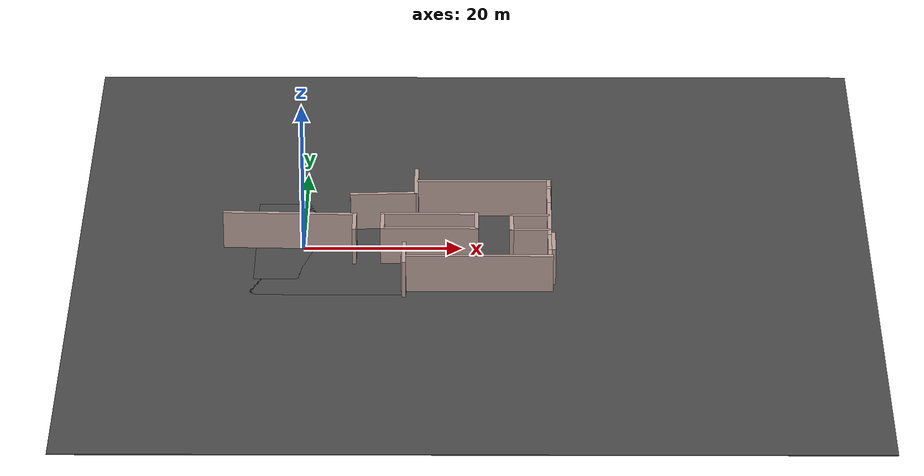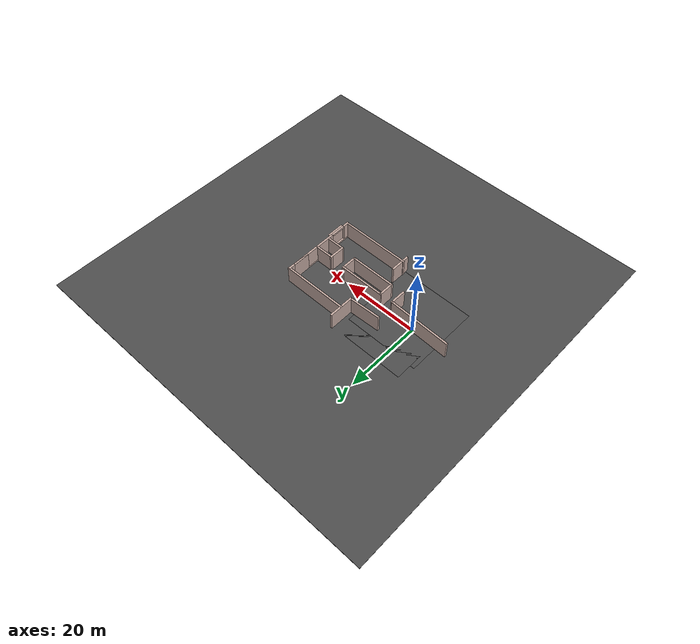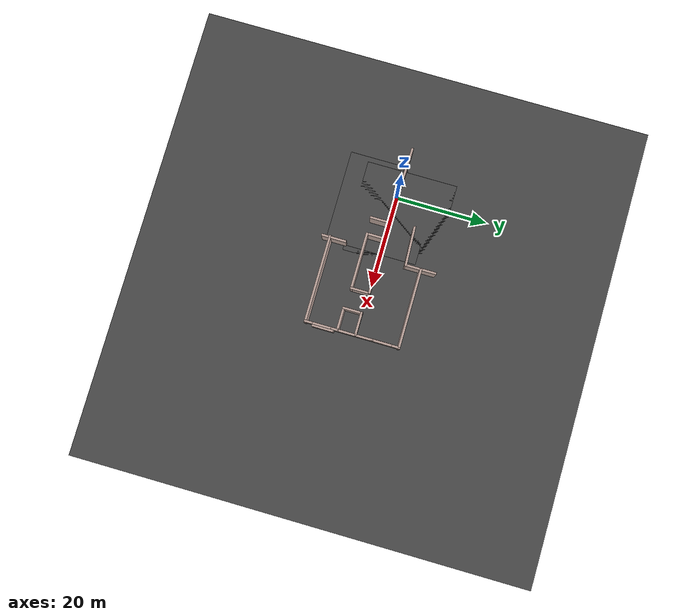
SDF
<sdf version="1.6">
 <model name="engineering_815">
  <link name="Wall_348">
   <pose>14.1272 8.89037 0 0 -0 1.5708</pose>
   <visual name="Wall_348_Visual">
    <pose>0 0 2.5 0 -0 0</pose>
    <geometry><box><size>6.85 0.5 5</size></box></geometry>
    <material>
     <script><uri>file://media/materials/scripts/gazebo.material</uri><name>Gazebo/Grey</name></script>
     <ambient>0.760784 0.662745 0.627451 1</ambient>
     <diffuse>0.7 0.7 0.7 1</diffuse>
     <specular>0.01 0.01 0.01 1</specular>
     <emissive>0 0 0 1</emissive>
    </material>
   </visual>
   <collision name="Wall_348_Collision">
    <pose>0 0 2.5 0 -0 0</pose>
    <geometry><box><size>6.85 0.5 5</size></box></geometry>
    <surface>
     <friction>
      <ode><mu>1</mu><mu2>1</mu2><fdir1>0 0 0</fdir1><slip1>0</slip1><slip2>0</slip2></ode>
      <torsional>
       <coefficient>1</coefficient>
       <patch_radius>0</patch_radius>
       <surface_radius>0</surface_radius>
       <use_patch_radius>1</use_patch_radius>
       <ode><slip>0</slip></ode>
      </torsional>
     </friction>
     <bounce><restitution_coefficient>0</restitution_coefficient><threshold>1e+06</threshold></bounce>
     <contact>
      <collide_without_contact>0</collide_without_contact>
      <collide_without_contact_bitmask>1</collide_without_contact_bitmask>
      <collide_bitmask>1</collide_bitmask>
      <ode>
       <soft_cfm>0</soft_cfm>
       <soft_erp>0.2</soft_erp>
       <kp>1e+13</kp>
       <kd>1</kd>
       <max_vel>0.01</max_vel>
       <min_depth>0</min_depth>
      </ode>
      <bullet>
       <split_impulse>1</split_impulse>
       <split_impulse_penetration_threshold>-0.01</split_impulse_penetration_threshold>
       <soft_cfm>0</soft_cfm>
       <soft_erp>0.2</soft_erp>
       <kp>1e+13</kp>
       <kd>1</kd>
      </bullet>
     </contact>
    </surface>
   </collision>
  </link>
  <link name="Wall_356">
   <pose>12.8062 -10.2246 0 0 0 -1.5708</pose>
   <visual name="Wall_356_Visual">
    <pose>0 0 2.5 0 -0 0</pose>
    <geometry><box><size>5.34955 0.5 5</size></box></geometry>
    <material>
     <script><uri>file://media/materials/scripts/gazebo.material</uri><name>Gazebo/Grey</name></script>
     <ambient>0.760784 0.662745 0.627451 1</ambient>
     <diffuse>0.7 0.7 0.7 1</diffuse>
     <specular>0.01 0.01 0.01 1</specular>
     <emissive>0 0 0 1</emissive>
    </material>
   </visual>
   <collision name="Wall_356_Collision">
    <pose>0 0 2.5 0 -0 0</pose>
    <geometry><box><size>5.34955 0.5 5</size></box></geometry>
    <surface>
     <friction>
      <ode><mu>1</mu><mu2>1</mu2><fdir1>0 0 0</fdir1><slip1>0</slip1><slip2>0</slip2></ode>
      <torsional>
       <coefficient>1</coefficient>
       <patch_radius>0</patch_radius>
       <surface_radius>0</surface_radius>
       <use_patch_radius>1</use_patch_radius>
       <ode><slip>0</slip></ode>
      </torsional>
     </friction>
     <bounce><restitution_coefficient>0</restitution_coefficient><threshold>1e+06</threshold></bounce>
     <contact>
      <collide_without_contact>0</collide_without_contact>
      <collide_without_contact_bitmask>1</collide_without_contact_bitmask>
      <collide_bitmask>1</collide_bitmask>
      <ode>
       <soft_cfm>0</soft_cfm>
       <soft_erp>0.2</soft_erp>
       <kp>1e+13</kp>
       <kd>1</kd>
       <max_vel>0.01</max_vel>
       <min_depth>0</min_depth>
      </ode>
      <bullet>
       <split_impulse>1</split_impulse>
       <split_impulse_penetration_threshold>-0.01</split_impulse_penetration_threshold>
       <soft_cfm>0</soft_cfm>
       <soft_erp>0.2</soft_erp>
       <kp>1e+13</kp>
       <kd>1</kd>
      </bullet>
     </contact>
    </surface>
   </collision>
  </link>
  <link name="Wall_359_clone_1">
   <pose>31.4492 -7.25835 0 0 0 -1.5708</pose>
   <visual name="Wall_359_Visual">
    <pose>0 0 2.5 0 -0 0</pose>
    <geometry><box><size>4.59973 0.5 5</size></box></geometry>
    <material>
     <script><uri>file://media/materials/scripts/gazebo.material</uri><name>Gazebo/Grey</name></script>
     <ambient>0.760784 0.662745 0.627451 1</ambient>
     <diffuse>0.7 0.7 0.7 1</diffuse>
     <specular>0.01 0.01 0.01 1</specular>
     <emissive>0 0 0 1</emissive>
     <shader type="pixel"/>
    </material>
   </visual>
   <collision name="Wall_359_Collision">
    <pose>0 0 2.5 0 -0 0</pose>
    <geometry><box><size>4.59973 0.5 5</size></box></geometry>
    <surface>
     <friction>
      <ode><mu>1</mu><mu2>1</mu2><fdir1>0 0 0</fdir1><slip1>0</slip1><slip2>0</slip2></ode>
      <torsional>
       <coefficient>1</coefficient>
       <patch_radius>0</patch_radius>
       <surface_radius>0</surface_radius>
       <use_patch_radius>1</use_patch_radius>
       <ode><slip>0</slip></ode>
      </torsional>
     </friction>
     <bounce><restitution_coefficient>0</restitution_coefficient><threshold>1e+06</threshold></bounce>
     <contact>
      <collide_without_contact>0</collide_without_contact>
      <collide_without_contact_bitmask>1</collide_without_contact_bitmask>
      <collide_bitmask>1</collide_bitmask>
      <ode>
       <soft_cfm>0</soft_cfm>
       <soft_erp>0.2</soft_erp>
       <kp>1e+13</kp>
       <kd>1</kd>
       <max_vel>0.01</max_vel>
       <min_depth>0</min_depth>
      </ode>
      <bullet>
       <split_impulse>1</split_impulse>
       <split_impulse_penetration_threshold>-0.01</split_impulse_penetration_threshold>
       <soft_cfm>0</soft_cfm>
       <soft_erp>0.2</soft_erp>
       <kp>1e+13</kp>
       <kd>1</kd>
      </bullet>
     </contact>
    </surface>
   </collision>
  </link>
  <link name="Wall_359_clone_2">
   <pose>30.9564 5.28437 0 0 0 -1.5708</pose>
   <visual name="Wall_359_Visual">
    <pose>0 0 2.5 0 -0 0</pose>
    <geometry><box><size>4.59973 0.5 5</size></box></geometry>
    <material>
     <script><uri>file://media/materials/scripts/gazebo.material</uri><name>Gazebo/Grey</name></script>
     <ambient>0.760784 0.662745 0.627451 1</ambient>
     <diffuse>0.7 0.7 0.7 1</diffuse>
     <specular>0.01 0.01 0.01 1</specular>
     <emissive>0 0 0 1</emissive>
     <shader type="pixel"/>
    </material>
   </visual>
   <collision name="Wall_359_Collision">
    <pose>0 0 2.5 0 -0 0</pose>
    <geometry><box><size>4.59973 0.5 5</size></box></geometry>
    <surface>
     <friction>
      <ode><mu>1</mu><mu2>1</mu2><fdir1>0 0 0</fdir1><slip1>0</slip1><slip2>0</slip2></ode>
      <torsional>
       <coefficient>1</coefficient>
       <patch_radius>0</patch_radius>
       <surface_radius>0</surface_radius>
       <use_patch_radius>1</use_patch_radius>
       <ode><slip>0</slip></ode>
      </torsional>
     </friction>
     <bounce><restitution_coefficient>0</restitution_coefficient><threshold>1e+06</threshold></bounce>
     <contact>
      <collide_without_contact>0</collide_without_contact>
      <collide_without_contact_bitmask>1</collide_without_contact_bitmask>
      <collide_bitmask>1</collide_bitmask>
      <ode>
       <soft_cfm>0</soft_cfm>
       <soft_erp>0.2</soft_erp>
       <kp>1e+13</kp>
       <kd>1</kd>
       <max_vel>0.01</max_vel>
       <min_depth>0</min_depth>
      </ode>
      <bullet>
       <split_impulse>1</split_impulse>
       <split_impulse_penetration_threshold>-0.01</split_impulse_penetration_threshold>
       <soft_cfm>0</soft_cfm>
       <soft_erp>0.2</soft_erp>
       <kp>1e+13</kp>
       <kd>1</kd>
      </bullet>
     </contact>
    </surface>
   </collision>
  </link>
  <link name="Wall_366">
   <pose>6.46321 -2.01663 0 0 -0 1.5708</pose>
   <visual name="Wall_366_Visual">
    <pose>0 0 2.5 0 -0 0</pose>
    <geometry><box><size>4.35 0.5 5</size></box></geometry>
    <material>
     <script><uri>file://media/materials/scripts/gazebo.material</uri><name>Gazebo/Grey</name></script>
     <ambient>0.760784 0.662745 0.627451 1</ambient>
     <diffuse>0.7 0.7 0.7 1</diffuse>
     <specular>0.01 0.01 0.01 1</specular>
     <emissive>0 0 0 1</emissive>
    </material>
   </visual>
   <collision name="Wall_366_Collision">
    <pose>0 0 2.5 0 -0 0</pose>
    <geometry><box><size>4.35 0.5 5</size></box></geometry>
    <surface>
     <friction>
      <ode><mu>1</mu><mu2>1</mu2><fdir1>0 0 0</fdir1><slip1>0</slip1><slip2>0</slip2></ode>
      <torsional>
       <coefficient>1</coefficient>
       <patch_radius>0</patch_radius>
       <surface_radius>0</surface_radius>
       <use_patch_radius>1</use_patch_radius>
       <ode><slip>0</slip></ode>
      </torsional>
     </friction>
     <bounce><restitution_coefficient>0</restitution_coefficient><threshold>1e+06</threshold></bounce>
     <contact>
      <collide_without_contact>0</collide_without_contact>
      <collide_without_contact_bitmask>1</collide_without_contact_bitmask>
      <collide_bitmask>1</collide_bitmask>
      <ode>
       <soft_cfm>0</soft_cfm>
       <soft_erp>0.2</soft_erp>
       <kp>1e+13</kp>
       <kd>1</kd>
       <max_vel>0.01</max_vel>
       <min_depth>0</min_depth>
      </ode>
      <bullet>
       <split_impulse>1</split_impulse>
       <split_impulse_penetration_threshold>-0.01</split_impulse_penetration_threshold>
       <soft_cfm>0</soft_cfm>
       <soft_erp>0.2</soft_erp>
       <kp>1e+13</kp>
       <kd>1</kd>
      </bullet>
     </contact>
    </surface>
   </collision>
  </link>
  <link name="Wall_367">
   <pose>-1.71178 0.158371 0 0 -0 3.11102</pose>
   <visual name="Wall_367_Visual">
    <pose>0 0 2.5 0 -0 0</pose>
    <geometry><box><size>16.8579 0.5 5</size></box></geometry>
    <material>
     <script><uri>file://media/materials/scripts/gazebo.material</uri><name>Gazebo/Grey</name></script>
     <ambient>0.760784 0.662745 0.627451 1</ambient>
     <diffuse>0.7 0.7 0.7 1</diffuse>
     <specular>0.01 0.01 0.01 1</specular>
     <emissive>0 0 0 1</emissive>
    </material>
   </visual>
   <collision name="Wall_367_Collision">
    <pose>0 0 2.5 0 -0 0</pose>
    <geometry><box><size>16.8579 0.5 5</size></box></geometry>
    <surface>
     <friction>
      <ode><mu>1</mu><mu2>1</mu2><fdir1>0 0 0</fdir1><slip1>0</slip1><slip2>0</slip2></ode>
      <torsional>
       <coefficient>1</coefficient>
       <patch_radius>0</patch_radius>
       <surface_radius>0</surface_radius>
       <use_patch_radius>1</use_patch_radius>
       <ode><slip>0</slip></ode>
      </torsional>
     </friction>
     <bounce><restitution_coefficient>0</restitution_coefficient><threshold>1e+06</threshold></bounce>
     <contact>
      <collide_without_contact>0</collide_without_contact>
      <collide_without_contact_bitmask>1</collide_without_contact_bitmask>
      <collide_bitmask>1</collide_bitmask>
      <ode>
       <soft_cfm>0</soft_cfm>
       <soft_erp>0.2</soft_erp>
       <kp>1e+13</kp>
       <kd>1</kd>
       <max_vel>0.01</max_vel>
       <min_depth>0</min_depth>
      </ode>
      <bullet>
       <split_impulse>1</split_impulse>
       <split_impulse_penetration_threshold>-0.01</split_impulse_penetration_threshold>
       <soft_cfm>0</soft_cfm>
       <soft_erp>0.2</soft_erp>
       <kp>1e+13</kp>
       <kd>1</kd>
      </bullet>
     </contact>
    </surface>
   </collision>
  </link>
  <link name="Wall_370">
   <pose>9.99521 -2.02863 0 0 0 -1.5708</pose>
   <visual name="Wall_370_Visual">
    <pose>0 0 2.5 0 -0 0</pose>
    <geometry><box><size>4.09954 0.5 5</size></box></geometry>
    <material>
     <script><uri>file://media/materials/scripts/gazebo.material</uri><name>Gazebo/Grey</name></script>
     <ambient>0.760784 0.662745 0.627451 1</ambient>
     <diffuse>0.7 0.7 0.7 1</diffuse>
     <specular>0.01 0.01 0.01 1</specular>
     <emissive>0 0 0 1</emissive>
    </material>
   </visual>
   <collision name="Wall_370_Collision">
    <pose>0 0 2.5 0 -0 0</pose>
    <geometry><box><size>4.09954 0.5 5</size></box></geometry>
    <surface>
     <friction>
      <ode><mu>1</mu><mu2>1</mu2><fdir1>0 0 0</fdir1><slip1>0</slip1><slip2>0</slip2></ode>
      <torsional>
       <coefficient>1</coefficient>
       <patch_radius>0</patch_radius>
       <surface_radius>0</surface_radius>
       <use_patch_radius>1</use_patch_radius>
       <ode><slip>0</slip></ode>
      </torsional>
     </friction>
     <bounce><restitution_coefficient>0</restitution_coefficient><threshold>1e+06</threshold></bounce>
     <contact>
      <collide_without_contact>0</collide_without_contact>
      <collide_without_contact_bitmask>1</collide_without_contact_bitmask>
      <collide_bitmask>1</collide_bitmask>
      <ode>
       <soft_cfm>0</soft_cfm>
       <soft_erp>0.2</soft_erp>
       <kp>1e+13</kp>
       <kd>1</kd>
       <max_vel>0.01</max_vel>
       <min_depth>0</min_depth>
      </ode>
      <bullet>
       <split_impulse>1</split_impulse>
       <split_impulse_penetration_threshold>-0.01</split_impulse_penetration_threshold>
       <soft_cfm>0</soft_cfm>
       <soft_erp>0.2</soft_erp>
       <kp>1e+13</kp>
       <kd>1</kd>
      </bullet>
     </contact>
    </surface>
   </collision>
  </link>
  <link name="Wall_371">
   <pose>15.9202 -3.82863 0 0 -0 0</pose>
   <visual name="Wall_371_Visual">
    <pose>0 0 2.5 0 -0 0</pose>
    <geometry><box><size>12.3505 0.5 5</size></box></geometry>
    <material>
     <script><uri>file://media/materials/scripts/gazebo.material</uri><name>Gazebo/Grey</name></script>
     <ambient>0.760784 0.662745 0.627451 1</ambient>
     <diffuse>0.7 0.7 0.7 1</diffuse>
     <specular>0.01 0.01 0.01 1</specular>
     <emissive>0 0 0 1</emissive>
    </material>
   </visual>
   <collision name="Wall_371_Collision">
    <pose>0 0 2.5 0 -0 0</pose>
    <geometry><box><size>12.3505 0.5 5</size></box></geometry>
    <surface>
     <friction>
      <ode><mu>1</mu><mu2>1</mu2><fdir1>0 0 0</fdir1><slip1>0</slip1><slip2>0</slip2></ode>
      <torsional>
       <coefficient>1</coefficient>
       <patch_radius>0</patch_radius>
       <surface_radius>0</surface_radius>
       <use_patch_radius>1</use_patch_radius>
       <ode><slip>0</slip></ode>
      </torsional>
     </friction>
     <bounce><restitution_coefficient>0</restitution_coefficient><threshold>1e+06</threshold></bounce>
     <contact>
      <collide_without_contact>0</collide_without_contact>
      <collide_without_contact_bitmask>1</collide_without_contact_bitmask>
      <collide_bitmask>1</collide_bitmask>
      <ode>
       <soft_cfm>0</soft_cfm>
       <soft_erp>0.2</soft_erp>
       <kp>1e+13</kp>
       <kd>1</kd>
       <max_vel>0.01</max_vel>
       <min_depth>0</min_depth>
      </ode>
      <bullet>
       <split_impulse>1</split_impulse>
       <split_impulse_penetration_threshold>-0.01</split_impulse_penetration_threshold>
       <soft_cfm>0</soft_cfm>
       <soft_erp>0.2</soft_erp>
       <kp>1e+13</kp>
       <kd>1</kd>
      </bullet>
     </contact>
    </surface>
   </collision>
  </link>
  <link name="Wall_372">
   <pose>21.8452 -1.90363 0 0 -0 1.5708</pose>
   <visual name="Wall_372_Visual">
    <pose>0 0 2.5 0 -0 0</pose>
    <geometry><box><size>4.35 0.5 5</size></box></geometry>
    <material>
     <script><uri>file://media/materials/scripts/gazebo.material</uri><name>Gazebo/Grey</name></script>
     <ambient>0.760784 0.662745 0.627451 1</ambient>
     <diffuse>0.7 0.7 0.7 1</diffuse>
     <specular>0.01 0.01 0.01 1</specular>
     <emissive>0 0 0 1</emissive>
    </material>
   </visual>
   <collision name="Wall_372_Collision">
    <pose>0 0 2.5 0 -0 0</pose>
    <geometry><box><size>4.35 0.5 5</size></box></geometry>
    <surface>
     <friction>
      <ode><mu>1</mu><mu2>1</mu2><fdir1>0 0 0</fdir1><slip1>0</slip1><slip2>0</slip2></ode>
      <torsional>
       <coefficient>1</coefficient>
       <patch_radius>0</patch_radius>
       <surface_radius>0</surface_radius>
       <use_patch_radius>1</use_patch_radius>
       <ode><slip>0</slip></ode>
      </torsional>
     </friction>
     <bounce><restitution_coefficient>0</restitution_coefficient><threshold>1e+06</threshold></bounce>
     <contact>
      <collide_without_contact>0</collide_without_contact>
      <collide_without_contact_bitmask>1</collide_without_contact_bitmask>
      <collide_bitmask>1</collide_bitmask>
      <ode>
       <soft_cfm>0</soft_cfm>
       <soft_erp>0.2</soft_erp>
       <kp>1e+13</kp>
       <kd>1</kd>
       <max_vel>0.01</max_vel>
       <min_depth>0</min_depth>
      </ode>
      <bullet>
       <split_impulse>1</split_impulse>
       <split_impulse_penetration_threshold>-0.01</split_impulse_penetration_threshold>
       <soft_cfm>0</soft_cfm>
       <soft_erp>0.2</soft_erp>
       <kp>1e+13</kp>
       <kd>1</kd>
      </bullet>
     </contact>
    </surface>
   </collision>
  </link>
  <link name="Wall_373">
   <pose>15.9202 0.021371 0 0 -0 3.14159</pose>
   <visual name="Wall_373_Visual">
    <pose>0 0 2.5 0 -0 0</pose>
    <geometry><box><size>12.3495 0.5 5</size></box></geometry>
    <material>
     <script><uri>file://media/materials/scripts/gazebo.material</uri><name>Gazebo/Grey</name></script>
     <ambient>0.760784 0.662745 0.627451 1</ambient>
     <diffuse>0.7 0.7 0.7 1</diffuse>
     <specular>0.01 0.01 0.01 1</specular>
     <emissive>0 0 0 1</emissive>
    </material>
   </visual>
   <collision name="Wall_373_Collision">
    <pose>0 0 2.5 0 -0 0</pose>
    <geometry><box><size>12.3495 0.5 5</size></box></geometry>
    <surface>
     <friction>
      <ode><mu>1</mu><mu2>1</mu2><fdir1>0 0 0</fdir1><slip1>0</slip1><slip2>0</slip2></ode>
      <torsional>
       <coefficient>1</coefficient>
       <patch_radius>0</patch_radius>
       <surface_radius>0</surface_radius>
       <use_patch_radius>1</use_patch_radius>
       <ode><slip>0</slip></ode>
      </torsional>
     </friction>
     <bounce><restitution_coefficient>0</restitution_coefficient><threshold>1e+06</threshold></bounce>
     <contact>
      <collide_without_contact>0</collide_without_contact>
      <collide_without_contact_bitmask>1</collide_without_contact_bitmask>
      <collide_bitmask>1</collide_bitmask>
      <ode>
       <soft_cfm>0</soft_cfm>
       <soft_erp>0.2</soft_erp>
       <kp>1e+13</kp>
       <kd>1</kd>
       <max_vel>0.01</max_vel>
       <min_depth>0</min_depth>
      </ode>
      <bullet>
       <split_impulse>1</split_impulse>
       <split_impulse_penetration_threshold>-0.01</split_impulse_penetration_threshold>
       <soft_cfm>0</soft_cfm>
       <soft_erp>0.2</soft_erp>
       <kp>1e+13</kp>
       <kd>1</kd>
      </bullet>
     </contact>
    </surface>
   </collision>
  </link>
  <link name="Wall_378">
   <pose>22.6491 9.00137 0 0 -0 0</pose>
   <visual name="Wall_378_Visual">
    <pose>0 0 2.5 0 -0 0</pose>
    <geometry><box><size>17.4538 0.5 5</size></box></geometry>
    <material>
     <script><uri>file://media/materials/scripts/gazebo.material</uri><name>Gazebo/Grey</name></script>
     <ambient>0.760784 0.662745 0.627451 1</ambient>
     <diffuse>0.7 0.7 0.7 1</diffuse>
     <specular>0.01 0.01 0.01 1</specular>
     <emissive>0 0 0 1</emissive>
    </material>
   </visual>
   <collision name="Wall_378_Collision">
    <pose>0 0 2.5 0 -0 0</pose>
    <geometry><box><size>17.4538 0.5 5</size></box></geometry>
    <surface>
     <friction>
      <ode><mu>1</mu><mu2>1</mu2><fdir1>0 0 0</fdir1><slip1>0</slip1><slip2>0</slip2></ode>
      <torsional>
       <coefficient>1</coefficient>
       <patch_radius>0</patch_radius>
       <surface_radius>0</surface_radius>
       <use_patch_radius>1</use_patch_radius>
       <ode><slip>0</slip></ode>
      </torsional>
     </friction>
     <bounce><restitution_coefficient>0</restitution_coefficient><threshold>1e+06</threshold></bounce>
     <contact>
      <collide_without_contact>0</collide_without_contact>
      <collide_without_contact_bitmask>1</collide_without_contact_bitmask>
      <collide_bitmask>1</collide_bitmask>
      <ode>
       <soft_cfm>0</soft_cfm>
       <soft_erp>0.2</soft_erp>
       <kp>1e+13</kp>
       <kd>1</kd>
       <max_vel>0.01</max_vel>
       <min_depth>0</min_depth>
      </ode>
      <bullet>
       <split_impulse>1</split_impulse>
       <split_impulse_penetration_threshold>-0.01</split_impulse_penetration_threshold>
       <soft_cfm>0</soft_cfm>
       <soft_erp>0.2</soft_erp>
       <kp>1e+13</kp>
       <kd>1</kd>
      </bullet>
     </contact>
    </surface>
   </collision>
  </link>
  <link name="Wall_380">
   <pose>30.9845 -1.04863 0 0 0 -1.5708</pose>
   <visual name="Wall_380_Visual_3">
    <pose>9.40635 0 2.75 0 -0 0</pose>
    <geometry><box><size>1.78723 0.5 4.5</size></box></geometry>
    <material>
     <script><uri>file://media/materials/scripts/gazebo.material</uri><name>Gazebo/Grey</name></script>
     <ambient>0.760784 0.662745 0.627451 1</ambient>
     <diffuse>0.7 0.7 0.7 1</diffuse>
     <specular>0.01 0.01 0.01 1</specular>
     <emissive>0 0 0 1</emissive>
    </material>
   </visual>
   <visual name="Wall_380_Visual_4">
    <pose>-6.50656 0 4.75 0 -0 0</pose>
    <geometry><box><size>4 0.5 0.5</size></box></geometry>
    <material>
     <script><uri>file://media/materials/scripts/gazebo.material</uri><name>Gazebo/Grey</name></script>
     <ambient>0.760784 0.662745 0.627451 1</ambient>
     <diffuse>0.7 0.7 0.7 1</diffuse>
     <specular>0.01 0.01 0.01 1</specular>
     <emissive>0 0 0 1</emissive>
    </material>
   </visual>
   <visual name="Wall_380_Visual_2">
    <pose>0.003087 0 2.75 0 -0 0</pose>
    <geometry><box><size>9.0193 0.5 4.5</size></box></geometry>
    <material>
     <script><uri>file://media/materials/scripts/gazebo.material</uri><name>Gazebo/Grey</name></script>
     <ambient>0.760784 0.662745 0.627451 1</ambient>
     <diffuse>0.7 0.7 0.7 1</diffuse>
     <specular>0.01 0.01 0.01 1</specular>
     <emissive>0 0 0 1</emissive>
    </material>
   </visual>
   <visual name="Wall_380_Visual_5">
    <pose>6.51274 0 4.75 0 -0 0</pose>
    <geometry><box><size>4 0.5 0.5</size></box></geometry>
    <material>
     <script><uri>file://media/materials/scripts/gazebo.material</uri><name>Gazebo/Grey</name></script>
     <ambient>0.760784 0.662745 0.627451 1</ambient>
     <diffuse>0.7 0.7 0.7 1</diffuse>
     <specular>0.01 0.01 0.01 1</specular>
     <emissive>0 0 0 1</emissive>
    </material>
   </visual>
   <visual name="Wall_380_Visual_1">
    <pose>0.896699 0 0.25 0 -0 0</pose>
    <geometry><box><size>18.8065 0.5 0.5</size></box></geometry>
    <material>
     <script><uri>file://media/materials/scripts/gazebo.material</uri><name>Gazebo/Grey</name></script>
     <ambient>0.760784 0.662745 0.627451 1</ambient>
     <diffuse>0.7 0.7 0.7 1</diffuse>
     <specular>0.01 0.01 0.01 1</specular>
     <emissive>0 0 0 1</emissive>
    </material>
   </visual>
   <visual name="Wall_380_Visual_0">
    <pose>-9.40326 0 2.5 0 -0 0</pose>
    <geometry><box><size>1.7934 0.5 5</size></box></geometry>
    <material>
     <script><uri>file://media/materials/scripts/gazebo.material</uri><name>Gazebo/Grey</name></script>
     <ambient>0.760784 0.662745 0.627451 1</ambient>
     <diffuse>0.7 0.7 0.7 1</diffuse>
     <specular>0.01 0.01 0.01 1</specular>
     <emissive>0 0 0 1</emissive>
    </material>
   </visual>
   <collision name="Wall_380_Collision_3">
    <pose>9.40635 0 2.75 0 -0 0</pose>
    <geometry><box><size>1.78723 0.5 4.5</size></box></geometry>
    <surface>
     <friction>
      <ode><mu>1</mu><mu2>1</mu2><fdir1>0 0 0</fdir1><slip1>0</slip1><slip2>0</slip2></ode>
      <torsional>
       <coefficient>1</coefficient>
       <patch_radius>0</patch_radius>
       <surface_radius>0</surface_radius>
       <use_patch_radius>1</use_patch_radius>
       <ode><slip>0</slip></ode>
      </torsional>
     </friction>
     <bounce><restitution_coefficient>0</restitution_coefficient><threshold>1e+06</threshold></bounce>
     <contact>
      <collide_without_contact>0</collide_without_contact>
      <collide_without_contact_bitmask>1</collide_without_contact_bitmask>
      <collide_bitmask>1</collide_bitmask>
      <ode>
       <soft_cfm>0</soft_cfm>
       <soft_erp>0.2</soft_erp>
       <kp>1e+13</kp>
       <kd>1</kd>
       <max_vel>0.01</max_vel>
       <min_depth>0</min_depth>
      </ode>
      <bullet>
       <split_impulse>1</split_impulse>
       <split_impulse_penetration_threshold>-0.01</split_impulse_penetration_threshold>
       <soft_cfm>0</soft_cfm>
       <soft_erp>0.2</soft_erp>
       <kp>1e+13</kp>
       <kd>1</kd>
      </bullet>
     </contact>
    </surface>
   </collision>
   <collision name="Wall_380_Collision_5">
    <pose>6.51274 0 4.75 0 -0 0</pose>
    <geometry><box><size>4 0.5 0.5</size></box></geometry>
    <surface>
     <friction>
      <ode><mu>1</mu><mu2>1</mu2><fdir1>0 0 0</fdir1><slip1>0</slip1><slip2>0</slip2></ode>
      <torsional>
       <coefficient>1</coefficient>
       <patch_radius>0</patch_radius>
       <surface_radius>0</surface_radius>
       <use_patch_radius>1</use_patch_radius>
       <ode><slip>0</slip></ode>
      </torsional>
     </friction>
     <bounce><restitution_coefficient>0</restitution_coefficient><threshold>1e+06</threshold></bounce>
     <contact>
      <collide_without_contact>0</collide_without_contact>
      <collide_without_contact_bitmask>1</collide_without_contact_bitmask>
      <collide_bitmask>1</collide_bitmask>
      <ode>
       <soft_cfm>0</soft_cfm>
       <soft_erp>0.2</soft_erp>
       <kp>1e+13</kp>
       <kd>1</kd>
       <max_vel>0.01</max_vel>
       <min_depth>0</min_depth>
      </ode>
      <bullet>
       <split_impulse>1</split_impulse>
       <split_impulse_penetration_threshold>-0.01</split_impulse_penetration_threshold>
       <soft_cfm>0</soft_cfm>
       <soft_erp>0.2</soft_erp>
       <kp>1e+13</kp>
       <kd>1</kd>
      </bullet>
     </contact>
    </surface>
   </collision>
   <collision name="Wall_380_Collision_0">
    <pose>-9.40326 0 2.5 0 -0 0</pose>
    <geometry><box><size>1.7934 0.5 5</size></box></geometry>
    <surface>
     <friction>
      <ode><mu>1</mu><mu2>1</mu2><fdir1>0 0 0</fdir1><slip1>0</slip1><slip2>0</slip2></ode>
      <torsional>
       <coefficient>1</coefficient>
       <patch_radius>0</patch_radius>
       <surface_radius>0</surface_radius>
       <use_patch_radius>1</use_patch_radius>
       <ode><slip>0</slip></ode>
      </torsional>
     </friction>
     <bounce><restitution_coefficient>0</restitution_coefficient><threshold>1e+06</threshold></bounce>
     <contact>
      <collide_without_contact>0</collide_without_contact>
      <collide_without_contact_bitmask>1</collide_without_contact_bitmask>
      <collide_bitmask>1</collide_bitmask>
      <ode>
       <soft_cfm>0</soft_cfm>
       <soft_erp>0.2</soft_erp>
       <kp>1e+13</kp>
       <kd>1</kd>
       <max_vel>0.01</max_vel>
       <min_depth>0</min_depth>
      </ode>
      <bullet>
       <split_impulse>1</split_impulse>
       <split_impulse_penetration_threshold>-0.01</split_impulse_penetration_threshold>
       <soft_cfm>0</soft_cfm>
       <soft_erp>0.2</soft_erp>
       <kp>1e+13</kp>
       <kd>1</kd>
      </bullet>
     </contact>
    </surface>
   </collision>
   <collision name="Wall_380_Collision_1">
    <pose>0.896699 0 0.25 0 -0 0</pose>
    <geometry><box><size>18.8065 0.5 0.5</size></box></geometry>
    <surface>
     <friction>
      <ode><mu>1</mu><mu2>1</mu2><fdir1>0 0 0</fdir1><slip1>0</slip1><slip2>0</slip2></ode>
      <torsional>
       <coefficient>1</coefficient>
       <patch_radius>0</patch_radius>
       <surface_radius>0</surface_radius>
       <use_patch_radius>1</use_patch_radius>
       <ode><slip>0</slip></ode>
      </torsional>
     </friction>
     <bounce><restitution_coefficient>0</restitution_coefficient><threshold>1e+06</threshold></bounce>
     <contact>
      <collide_without_contact>0</collide_without_contact>
      <collide_without_contact_bitmask>1</collide_without_contact_bitmask>
      <collide_bitmask>1</collide_bitmask>
      <ode>
       <soft_cfm>0</soft_cfm>
       <soft_erp>0.2</soft_erp>
       <kp>1e+13</kp>
       <kd>1</kd>
       <max_vel>0.01</max_vel>
       <min_depth>0</min_depth>
      </ode>
      <bullet>
       <split_impulse>1</split_impulse>
       <split_impulse_penetration_threshold>-0.01</split_impulse_penetration_threshold>
       <soft_cfm>0</soft_cfm>
       <soft_erp>0.2</soft_erp>
       <kp>1e+13</kp>
       <kd>1</kd>
      </bullet>
     </contact>
    </surface>
   </collision>
   <collision name="Wall_380_Collision_2">
    <pose>0.003087 0 2.75 0 -0 0</pose>
    <geometry><box><size>9.0193 0.5 4.5</size></box></geometry>
    <surface>
     <friction>
      <ode><mu>1</mu><mu2>1</mu2><fdir1>0 0 0</fdir1><slip1>0</slip1><slip2>0</slip2></ode>
      <torsional>
       <coefficient>1</coefficient>
       <patch_radius>0</patch_radius>
       <surface_radius>0</surface_radius>
       <use_patch_radius>1</use_patch_radius>
       <ode><slip>0</slip></ode>
      </torsional>
     </friction>
     <bounce><restitution_coefficient>0</restitution_coefficient><threshold>1e+06</threshold></bounce>
     <contact>
      <collide_without_contact>0</collide_without_contact>
      <collide_without_contact_bitmask>1</collide_without_contact_bitmask>
      <collide_bitmask>1</collide_bitmask>
      <ode>
       <soft_cfm>0</soft_cfm>
       <soft_erp>0.2</soft_erp>
       <kp>1e+13</kp>
       <kd>1</kd>
       <max_vel>0.01</max_vel>
       <min_depth>0</min_depth>
      </ode>
      <bullet>
       <split_impulse>1</split_impulse>
       <split_impulse_penetration_threshold>-0.01</split_impulse_penetration_threshold>
       <soft_cfm>0</soft_cfm>
       <soft_erp>0.2</soft_erp>
       <kp>1e+13</kp>
       <kd>1</kd>
      </bullet>
     </contact>
    </surface>
   </collision>
   <collision name="Wall_380_Collision_4">
    <pose>-6.50656 0 4.75 0 -0 0</pose>
    <geometry><box><size>4 0.5 0.5</size></box></geometry>
    <surface>
     <friction>
      <ode><mu>1</mu><mu2>1</mu2><fdir1>0 0 0</fdir1><slip1>0</slip1><slip2>0</slip2></ode>
      <torsional>
       <coefficient>1</coefficient>
       <patch_radius>0</patch_radius>
       <surface_radius>0</surface_radius>
       <use_patch_radius>1</use_patch_radius>
       <ode><slip>0</slip></ode>
      </torsional>
     </friction>
     <bounce><restitution_coefficient>0</restitution_coefficient><threshold>1e+06</threshold></bounce>
     <contact>
      <collide_without_contact>0</collide_without_contact>
      <collide_without_contact_bitmask>1</collide_without_contact_bitmask>
      <collide_bitmask>1</collide_bitmask>
      <ode>
       <soft_cfm>0</soft_cfm>
       <soft_erp>0.2</soft_erp>
       <kp>1e+13</kp>
       <kd>1</kd>
       <max_vel>0.01</max_vel>
       <min_depth>0</min_depth>
      </ode>
      <bullet>
       <split_impulse>1</split_impulse>
       <split_impulse_penetration_threshold>-0.01</split_impulse_penetration_threshold>
       <soft_cfm>0</soft_cfm>
       <soft_erp>0.2</soft_erp>
       <kp>1e+13</kp>
       <kd>1</kd>
      </bullet>
     </contact>
    </surface>
   </collision>
  </link>
  <link name="Wall_381">
   <pose>21.8991 -11.0986 0 0 -0 3.14159</pose>
   <visual name="Wall_381_Visual">
    <pose>0 0 2.5 0 -0 0</pose>
    <geometry><box><size>18.9538 0.5 5</size></box></geometry>
    <material>
     <script><uri>file://media/materials/scripts/gazebo.material</uri><name>Gazebo/Grey</name></script>
     <ambient>0.760784 0.662745 0.627451 1</ambient>
     <diffuse>0.7 0.7 0.7 1</diffuse>
     <specular>0.01 0.01 0.01 1</specular>
     <emissive>0 0 0 1</emissive>
    </material>
   </visual>
   <collision name="Wall_381_Collision">
    <pose>0 0 2.5 0 -0 0</pose>
    <geometry><box><size>18.9538 0.5 5</size></box></geometry>
    <surface>
     <friction>
      <ode><mu>1</mu><mu2>1</mu2><fdir1>0 0 0</fdir1><slip1>0</slip1><slip2>0</slip2></ode>
      <torsional>
       <coefficient>1</coefficient>
       <patch_radius>0</patch_radius>
       <surface_radius>0</surface_radius>
       <use_patch_radius>1</use_patch_radius>
       <ode><slip>0</slip></ode>
      </torsional>
     </friction>
     <bounce><restitution_coefficient>0</restitution_coefficient><threshold>1e+06</threshold></bounce>
     <contact>
      <collide_without_contact>0</collide_without_contact>
      <collide_without_contact_bitmask>1</collide_without_contact_bitmask>
      <collide_bitmask>1</collide_bitmask>
      <ode>
       <soft_cfm>0</soft_cfm>
       <soft_erp>0.2</soft_erp>
       <kp>1e+13</kp>
       <kd>1</kd>
       <max_vel>0.01</max_vel>
       <min_depth>0</min_depth>
      </ode>
      <bullet>
       <split_impulse>1</split_impulse>
       <split_impulse_penetration_threshold>-0.01</split_impulse_penetration_threshold>
       <soft_cfm>0</soft_cfm>
       <soft_erp>0.2</soft_erp>
       <kp>1e+13</kp>
       <kd>1</kd>
      </bullet>
     </contact>
    </surface>
   </collision>
  </link>
  <link name="Wall_384">
   <pose>26.2242 -2.28563 0 0 0 -1.5708</pose>
   <visual name="Wall_384_Visual">
    <pose>0 0 2.5 0 -0 0</pose>
    <geometry><box><size>4.35022 0.5 5</size></box></geometry>
    <material>
     <script><uri>file://media/materials/scripts/gazebo.material</uri><name>Gazebo/Grey</name></script>
     <ambient>0.760784 0.662745 0.627451 1</ambient>
     <diffuse>0.7 0.7 0.7 1</diffuse>
     <specular>0.01 0.01 0.01 1</specular>
     <emissive>0 0 0 1</emissive>
    </material>
   </visual>
   <collision name="Wall_384_Collision">
    <pose>0 0 2.5 0 -0 0</pose>
    <geometry><box><size>4.35022 0.5 5</size></box></geometry>
    <surface>
     <friction>
      <ode><mu>1</mu><mu2>1</mu2><fdir1>0 0 0</fdir1><slip1>0</slip1><slip2>0</slip2></ode>
      <torsional>
       <coefficient>1</coefficient>
       <patch_radius>0</patch_radius>
       <surface_radius>0</surface_radius>
       <use_patch_radius>1</use_patch_radius>
       <ode><slip>0</slip></ode>
      </torsional>
     </friction>
     <bounce><restitution_coefficient>0</restitution_coefficient><threshold>1e+06</threshold></bounce>
     <contact>
      <collide_without_contact>0</collide_without_contact>
      <collide_without_contact_bitmask>1</collide_without_contact_bitmask>
      <collide_bitmask>1</collide_bitmask>
      <ode>
       <soft_cfm>0</soft_cfm>
       <soft_erp>0.2</soft_erp>
       <kp>1e+13</kp>
       <kd>1</kd>
       <max_vel>0.01</max_vel>
       <min_depth>0</min_depth>
      </ode>
      <bullet>
       <split_impulse>1</split_impulse>
       <split_impulse_penetration_threshold>-0.01</split_impulse_penetration_threshold>
       <soft_cfm>0</soft_cfm>
       <soft_erp>0.2</soft_erp>
       <kp>1e+13</kp>
       <kd>1</kd>
      </bullet>
     </contact>
    </surface>
   </collision>
  </link>
  <link name="Wall_385">
   <pose>28.5242 -4.21063 0 0 -0 0</pose>
   <visual name="Wall_385_Visual">
    <pose>0 0 2.5 0 -0 0</pose>
    <geometry><box><size>5.10032 0.5 5</size></box></geometry>
    <material>
     <script><uri>file://media/materials/scripts/gazebo.material</uri><name>Gazebo/Grey</name></script>
     <ambient>0.760784 0.662745 0.627451 1</ambient>
     <diffuse>0.7 0.7 0.7 1</diffuse>
     <specular>0.01 0.01 0.01 1</specular>
     <emissive>0 0 0 1</emissive>
    </material>
   </visual>
   <collision name="Wall_385_Collision">
    <pose>0 0 2.5 0 -0 0</pose>
    <geometry><box><size>5.10032 0.5 5</size></box></geometry>
    <surface>
     <friction>
      <ode><mu>1</mu><mu2>1</mu2><fdir1>0 0 0</fdir1><slip1>0</slip1><slip2>0</slip2></ode>
      <torsional>
       <coefficient>1</coefficient>
       <patch_radius>0</patch_radius>
       <surface_radius>0</surface_radius>
       <use_patch_radius>1</use_patch_radius>
       <ode><slip>0</slip></ode>
      </torsional>
     </friction>
     <bounce><restitution_coefficient>0</restitution_coefficient><threshold>1e+06</threshold></bounce>
     <contact>
      <collide_without_contact>0</collide_without_contact>
      <collide_without_contact_bitmask>1</collide_without_contact_bitmask>
      <collide_bitmask>1</collide_bitmask>
      <ode>
       <soft_cfm>0</soft_cfm>
       <soft_erp>0.2</soft_erp>
       <kp>1e+13</kp>
       <kd>1</kd>
       <max_vel>0.01</max_vel>
       <min_depth>0</min_depth>
      </ode>
      <bullet>
       <split_impulse>1</split_impulse>
       <split_impulse_penetration_threshold>-0.01</split_impulse_penetration_threshold>
       <soft_cfm>0</soft_cfm>
       <soft_erp>0.2</soft_erp>
       <kp>1e+13</kp>
       <kd>1</kd>
      </bullet>
     </contact>
    </surface>
   </collision>
  </link>
  <link name="Wall_387">
   <pose>28.5242 -0.360629 0 0 -0 0</pose>
   <visual name="Wall_387_Visual">
    <pose>0 0 2.5 0 -0 0</pose>
    <geometry><box><size>5.10032 0.5 5</size></box></geometry>
    <material>
     <script><uri>file://media/materials/scripts/gazebo.material</uri><name>Gazebo/Grey</name></script>
     <ambient>0.760784 0.662745 0.627451 1</ambient>
     <diffuse>0.7 0.7 0.7 1</diffuse>
     <specular>0.01 0.01 0.01 1</specular>
     <emissive>0 0 0 1</emissive>
    </material>
   </visual>
   <collision name="Wall_387_Collision">
    <pose>0 0 2.5 0 -0 0</pose>
    <geometry><box><size>5.10032 0.5 5</size></box></geometry>
    <surface>
     <friction>
      <ode><mu>1</mu><mu2>1</mu2><fdir1>0 0 0</fdir1><slip1>0</slip1><slip2>0</slip2></ode>
      <torsional>
       <coefficient>1</coefficient>
       <patch_radius>0</patch_radius>
       <surface_radius>0</surface_radius>
       <use_patch_radius>1</use_patch_radius>
       <ode><slip>0</slip></ode>
      </torsional>
     </friction>
     <bounce><restitution_coefficient>0</restitution_coefficient><threshold>1e+06</threshold></bounce>
     <contact>
      <collide_without_contact>0</collide_without_contact>
      <collide_without_contact_bitmask>1</collide_without_contact_bitmask>
      <collide_bitmask>1</collide_bitmask>
      <ode>
       <soft_cfm>0</soft_cfm>
       <soft_erp>0.2</soft_erp>
       <kp>1e+13</kp>
       <kd>1</kd>
       <max_vel>0.01</max_vel>
       <min_depth>0</min_depth>
      </ode>
      <bullet>
       <split_impulse>1</split_impulse>
       <split_impulse_penetration_threshold>-0.01</split_impulse_penetration_threshold>
       <soft_cfm>0</soft_cfm>
       <soft_erp>0.2</soft_erp>
       <kp>1e+13</kp>
       <kd>1</kd>
      </bullet>
     </contact>
    </surface>
   </collision>
  </link>
  <link name="Wall_393">
   <pose>10.0822 5.53587 0 0 -0 0.044347</pose>
   <visual name="Wall_393_Visual">
    <pose>0 0 2.5 0 -0 0</pose>
    <geometry><box><size>8.59796 0.5 5</size></box></geometry>
    <material>
     <script><uri>file://media/materials/scripts/gazebo.material</uri><name>Gazebo/Grey</name></script>
     <ambient>0.760784 0.662745 0.627451 1</ambient>
     <diffuse>0.7 0.7 0.7 1</diffuse>
     <specular>0.01 0.01 0.01 1</specular>
     <emissive>0 0 0 1</emissive>
    </material>
   </visual>
   <collision name="Wall_393_Collision">
    <pose>0 0 2.5 0 -0 0</pose>
    <geometry><box><size>8.59796 0.5 5</size></box></geometry>
    <surface>
     <friction>
      <ode><mu>1</mu><mu2>1</mu2><fdir1>0 0 0</fdir1><slip1>0</slip1><slip2>0</slip2></ode>
      <torsional>
       <coefficient>1</coefficient>
       <patch_radius>0</patch_radius>
       <surface_radius>0</surface_radius>
       <use_patch_radius>1</use_patch_radius>
       <ode><slip>0</slip></ode>
      </torsional>
     </friction>
     <bounce><restitution_coefficient>0</restitution_coefficient><threshold>1e+06</threshold></bounce>
     <contact>
      <collide_without_contact>0</collide_without_contact>
      <collide_without_contact_bitmask>1</collide_without_contact_bitmask>
      <collide_bitmask>1</collide_bitmask>
      <ode>
       <soft_cfm>0</soft_cfm>
       <soft_erp>0.2</soft_erp>
       <kp>1e+13</kp>
       <kd>1</kd>
       <max_vel>0.01</max_vel>
       <min_depth>0</min_depth>
      </ode>
      <bullet>
       <split_impulse>1</split_impulse>
       <split_impulse_penetration_threshold>-0.01</split_impulse_penetration_threshold>
       <soft_cfm>0</soft_cfm>
       <soft_erp>0.2</soft_erp>
       <kp>1e+13</kp>
       <kd>1</kd>
      </bullet>
     </contact>
    </surface>
   </collision>
  </link>
  <model name="asphalt_plane">
   <static>1</static>
   <link name="link">
    <collision name="collision"><geometry><box><size>100 100 0.1</size></box></geometry></collision>
    <visual name="visual">
     <cast_shadows>0</cast_shadows>
     <geometry><box><size>100 100 0.1</size></box></geometry>
     <material>
      <script>
       <uri>model://asphalt_plane/materials/scripts</uri>
       <uri>model://asphalt_plane/materials/textures</uri>
       <name>vrc/asphalt</name>
      </script>
     </material>
    </visual>
   </link>
   <pose>21.4492 -1.16077 0 0 -0 0</pose>
  </model>
  <model name="asphalt_plane_clone">
   <static>1</static>
   <link name="link">
    <collision name="collision"><geometry><box><size>20 20 0.1</size></box></geometry></collision>
    <visual name="visual">
     <cast_shadows>0</cast_shadows>
     <geometry><box><size>20 20 0.1</size></box></geometry>
     <material>
      <script>
       <uri>model://asphalt_plane/materials/scripts</uri>
       <uri>model://asphalt_plane/materials/textures</uri>
       <name>vrc/asphalt</name>
      </script>
     </material>
    </visual>
   </link>
   <pose>3.93898 1.85224 0 0 -0 0</pose>
  </model>
  <model name="asphalt_plane_clone_0">
   <static>1</static>
   <link name="link">
    <collision name="collision"><geometry><box><size>20 20 0.1</size></box></geometry></collision>
    <visual name="visual">
     <cast_shadows>0</cast_shadows>
     <geometry><box><size>20 20 0.1</size></box></geometry>
     <material>
      <script>
       <uri>model://asphalt_plane/materials/scripts</uri>
       <uri>model://asphalt_plane/materials/textures</uri>
       <name>vrc/asphalt</name>
      </script>
     </material>
    </visual>
   </link>
   <pose>2.85146 -2.25206 0 0 -0 0</pose>
  </model>
  <static>1</static>
 </model>
</sdf>
